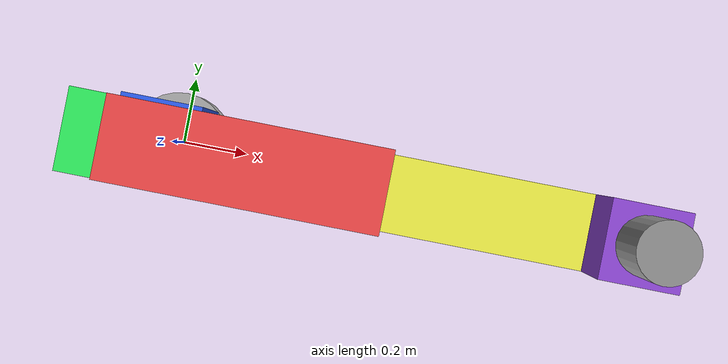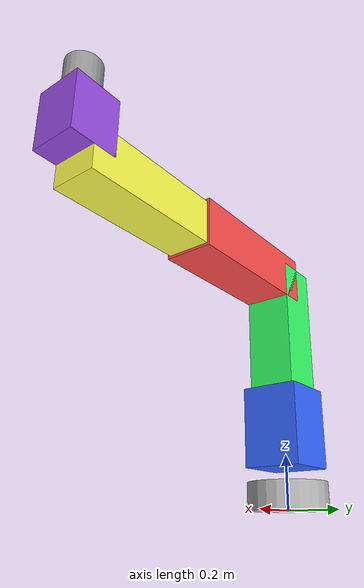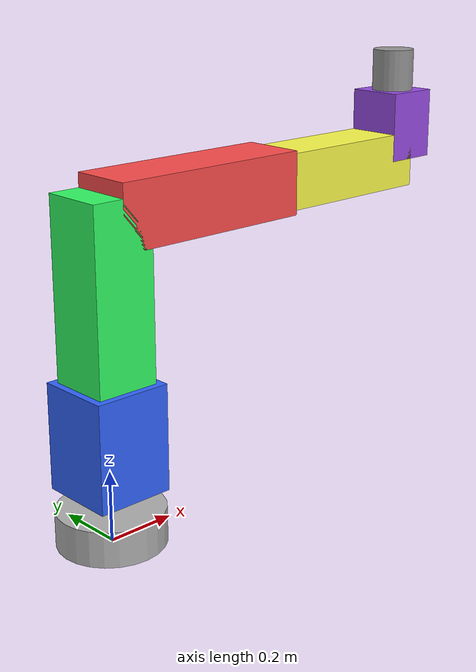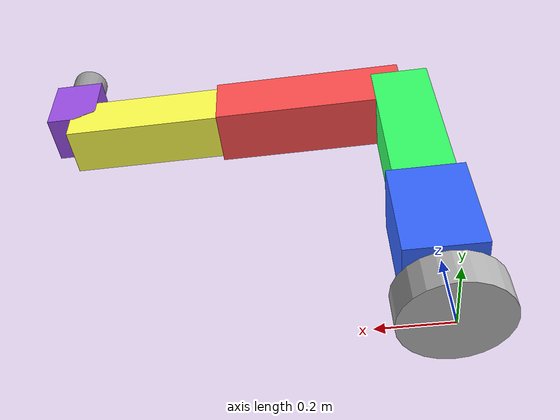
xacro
<?xml version="1.0"?>
<robot xmlns:xacro="http://ros.org/wiki/xacro" name="simple_arm">

  <!-- =========================
       base (固定台座)
       - 円柱で表現
       - static=true で地面に固定
     ========================= -->
  <link name="base_link">
    <inertial>
      <mass value="5.0"/>
      <inertia ixx="0.2" iyy="0.2" izz="0.2"
              ixy="0.0" ixz="0.0" iyz="0.0"/>
    </inertial>
    <visual>
      <origin rpy="0 0 0" xyz="0 0 0.05"/>
      <geometry>
        <cylinder radius="0.15" length="0.1"/>
      </geometry>
      <material name="gray_base">
        <color rgba="0.7 0.7 0.7 1"/>
      </material>
    </visual>
    <collision>
      <origin rpy="0 0 0" xyz="0 0 0.05"/>
      <geometry>
        <cylinder radius="0.15" length="0.1"/>
      </geometry>
    </collision>
    <gazebo reference="base_link">
      <static>true</static>
      <mu1>2.0</mu1>
      <mu2>2.0</mu2>
    </gazebo>
  </link>

  <!-- joint1: ベース旋回（Z軸回り） -->
  <joint name="joint1" type="revolute">
    <parent link="base_link"/>
    <child link="link1"/>
    <origin xyz="0 0 0.1" rpy="0 0 0"/>
    <axis xyz="0 0 1"/>
    <limit lower="-3.14" upper="3.14" effort="10" velocity="1.0"/>
  </joint>

  <!-- =========================
       link1 (ベース上の土台)
       - 短めの縦リンク
     ========================= -->
  <link name="link1">
    <inertial>
      <mass value="2.0"/>
      <inertia ixx="0.05" iyy="0.05" izz="0.05"/>
    </inertial>
    <visual>
      <!-- 縦方向に伸びる: z長さ0.3の中心を z=0.15 -->
      <origin xyz="0 0 0.2" rpy="0 0 0"/>
      <geometry>
        <box size="0.22 0.22 0.3"/>
      </geometry>
      <material name="blue">
        <color rgba="0.2 0.4 1.0 1"/>
      </material>
    </visual>
    <collision>
      <origin xyz="0 0 0.15" rpy="0 0 0"/>
      <geometry>
        <box size="0.22 0.22 0.3"/>
      </geometry>
    </collision>
    <gazebo reference="link1">
      <mu1>1.0</mu1>
      <mu2>1.0</mu2>
    </gazebo>
  </link>

  <!-- joint2: 肩ピッチ（Y軸回り） -->
  <joint name="joint2" type="revolute">
    <parent link="link1"/>
    <child link="link2"/>
    <!-- link1 の上端 (z=0.3 の半分) に関節配置 -->
    <origin xyz="0 0 0.3" rpy="0 0 0"/>
    <axis xyz="0 1 0"/>
    <limit effort="10" lower="-1.57" upper="1.57" velocity="1.0"/>
  </joint>

  <!-- =========================
       link2 (肩)
       - 縦にしっかり伸びる肩リンク
     ========================= -->
  <link name="link2">
    <inertial>
      <mass value="3.0"/>
      <inertia ixx="0.1" iyy="0.1" izz="0.1"/>
    </inertial>

    <visual>
      <origin xyz="0 0 0.3" rpy="0 0 0"/>
      <geometry>
        <box size="0.18 0.18 0.5"/>
      </geometry>
      <material name="green">
        <color rgba="0.2 1.0 0.4 1"/>
      </material>
    </visual>

    <collision>
      <origin xyz="0 0 0.25" rpy="0 0 0"/>
      <geometry>
        <box size="0.18 0.18 0.5"/>
      </geometry>
    </collision>
    <gazebo reference="link2">
      <mu1>2.0</mu1>
      <mu2>2.0</mu2>
    </gazebo>
  </link>

  <!-- joint3: 肘ピッチ（Y軸回り） -->
  <joint name="joint3" type="revolute">
    <parent link="link2"/>
    <child link="link3"/>
    <!-- link2 の上端に配置 -->
    <origin xyz="0 0 0.5" rpy="0 0 0"/>
    <axis xyz="0 1 0"/>
    <limit effort="10" lower="-1.57" upper="1.57" velocity="1.0"/>
  </joint>

  <!-- =========================
       link3 (上腕)
       - 前方に水平に伸びるリンク (X 正方向)
     ========================= -->
  <link name="link3">
    <inertial>
      <mass value="2.0"/>
      <inertia ixx="0.05" iyy="0.05" izz="0.05"
               ixy="0.0" ixz="0.0" iyz="0.0"/>
    </inertial>
    <visual>
      <!-- 水平方向に伸ばす: x長さ0.6 の中心を x=0.3 -->
      <origin xyz="0.3 0 0" rpy="0 0 0"/>
      <geometry>
        <box size="0.6 0.18 0.18"/>
      </geometry>
      <material name="red">
        <color rgba="1.0 0.3 0.3 1"/>
      </material>
    </visual>
    <collision>
      <origin xyz="0.3 0 0" rpy="0 0 0"/>
      <geometry>
        <box size="0.6 0.18 0.18"/>
      </geometry>
    </collision>
    <gazebo reference="link3">
      <mu1>1.0</mu1>
      <mu2>1.0</mu2>
    </gazebo>
  </link>

  <!-- joint4: 手首回転（Z軸回り） -->
  <joint name="joint4" type="revolute">
    <parent link="link3"/>
    <child link="link4"/>
    <!-- link3 の前端 (x=0.6 の半分) に配置 -->
    <origin xyz="0.6 0 0" rpy="0 0 0"/>
    <axis xyz="0 0 1"/>
    <limit effort="10" lower="-1.57" upper="1.57" velocity="1.0"/>
  </joint>

  <!-- =========================
       link4 (前腕)
       - さらに前方に水平に伸びるリンク (X 正方向)
     ========================= -->
  <link name="link4">
    <inertial>
      <mass value="2.0"/>
      <inertia ixx="0.05" iyy="0.05" izz="0.05"
               ixy="0.0" ixz="0.0" iyz="0.0"/>
    </inertial>
    <visual>
      <!-- 水平方向に伸ばす: x長さ0.5 の中心を x=0.25 -->
      <origin xyz="0.25 0 0" rpy="0 0 0"/>
      <geometry>
        <box size="0.5 0.16 0.16"/>
      </geometry>
      <material name="yellow">
        <color rgba="1.0 1.0 0.3 1"/>
      </material>
    </visual>
    <collision>
      <origin xyz="0.25 0 0" rpy="0 0 0"/>
      <geometry>
        <box size="0.5 0.16 0.16"/>
      </geometry>
    </collision>
    <gazebo reference="link4">
      <mu1>1.0</mu1>
      <mu2>1.0</mu2>
    </gazebo>
  </link>

  <!-- joint5: 手首ピッチ（Y軸回り） -->
  <joint name="joint5" type="revolute">
    <parent link="link4"/>
    <child link="link5"/>
    <!-- link4 の前端に配置 -->
    <origin xyz="0.5 0 0" rpy="0 0 0"/>
    <axis xyz="0 1 0"/>
    <limit effort="10" lower="-1.57" upper="1.57" velocity="1.0"/>
  </joint>

  <!-- =========================
       link5 (手首ピッチ部)
       - 短い縦リンク (Z 正方向に少し伸ばす)
     ========================= -->
  <link name="link5">
    <inertial>
      <mass value="2.0"/>
      <inertia ixx="0.05" iyy="0.05" izz="0.05"
               ixy="0.0" ixz="0.0" iyz="0.0"/>
    </inertial>
    <visual>
      <!-- 縦方向に短く伸ばす: z長さ0.2 の中心を z=0.1 -->
      <origin xyz="0 0 0.1" rpy="0 0 0"/>
      <geometry>
        <box size="0.16 0.16 0.2"/>
      </geometry>
      <material name="purple">
        <color rgba="0.6 0.3 0.9 1"/>
      </material>
    </visual>
    <collision>
      <origin xyz="0 0 0.1" rpy="0 0 0"/>
      <geometry>
        <box size="0.16 0.16 0.2"/>
      </geometry>
    </collision>
    <gazebo reference="link5">
      <mu1>1.0</mu1>
      <mu2>1.0</mu2>
    </gazebo>
  </link>

  <!-- joint6: 手首ロール（X軸回り） -->
  <joint name="joint6" type="revolute">
    <parent link="link5"/>
    <child link="link6"/>
    <!-- link5 の上端に配置 -->
    <origin xyz="0 0 0.2" rpy="0 0 0"/>
    <axis xyz="1 0 0"/>
    <limit effort="10" lower="-1.57" upper="1.57" velocity="1.0"/>
  </joint>

  <!-- =========================
       link6 (エンドエフェクタ取付部)
       - 小さめの円柱
     ========================= -->
  <link name="link6">
    <inertial>
      <mass value="2.0"/>
      <inertia ixx="0.05" iyy="0.05" izz="0.05"
               ixy="0.0" ixz="0.0" iyz="0.0"/>
    </inertial>
    <visual>
      <!-- 円柱を少し前に出す: 長さ0.12 の中心を z=0.06 -->
      <origin xyz="0 0 0.06" rpy="0 0 0"/>
      <geometry>
        <cylinder radius="0.06" length="0.12"/>
      </geometry>
      <material name="gray">
        <color rgba="0.6 0.6 0.6 1"/>
      </material>
    </visual>
    <collision>
      <origin xyz="0 0 0.06" rpy="0 0 0"/>
      <geometry>
        <cylinder radius="0.06" length="0.12"/>
      </geometry>
    </collision>
    <gazebo reference="link6">
      <mu1>1.0</mu1>
      <mu2>1.0</mu2>
    </gazebo>
  </link>

  <!-- =========================
       Ray距離センサ (link6 先端付近)
     ========================= -->
  <gazebo reference="link6">
    <sensor name="distance_sensor" type="ray">
      <!-- 円柱先端側へ少しオフセット -->
      <pose>0 0 0.1 0 0 0</pose>
      <update_rate>30</update_rate>
      <always_on>true</always_on>
      <ray>
        <scan>
          <horizontal>
            <samples>1</samples>
            <resolution>1</resolution>
            <min_angle>0</min_angle>
            <max_angle>0</max_angle>
          </horizontal>
        </scan>
        <range>
          <min>0.01</min>
          <max>2.0</max>
          <resolution>0.01</resolution>
        </range>
      </ray>
      <plugin name="gazebo_ros_ray_sensor" filename="libgazebo_ros_ray_sensor.so">
        <ros>
          <namespace>simple_arm</namespace>
          <remapping>~/out:=/simple_arm/distance</remapping>
        </ros>
        <output_type>sensor_msgs/Range</output_type>
        <radiation_type>ultrasound</radiation_type>
      </plugin>
    </sensor>
  </gazebo>

</robot>
